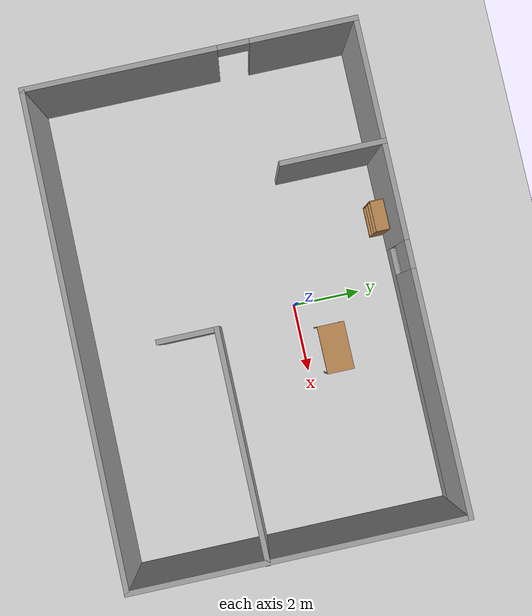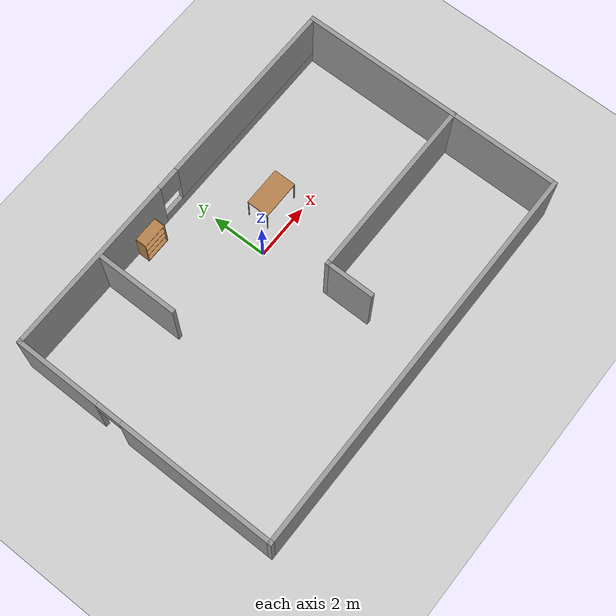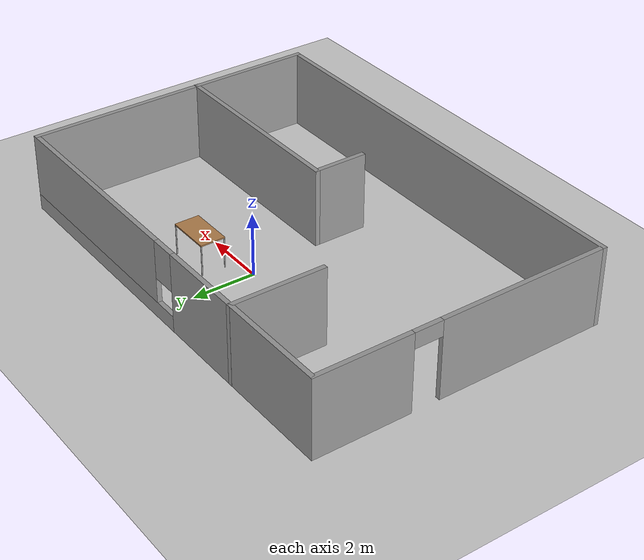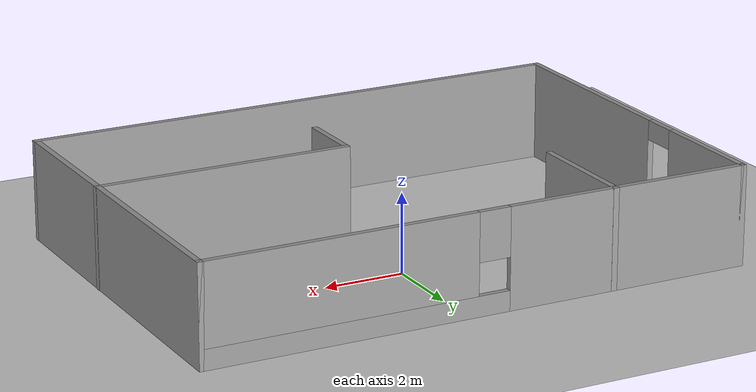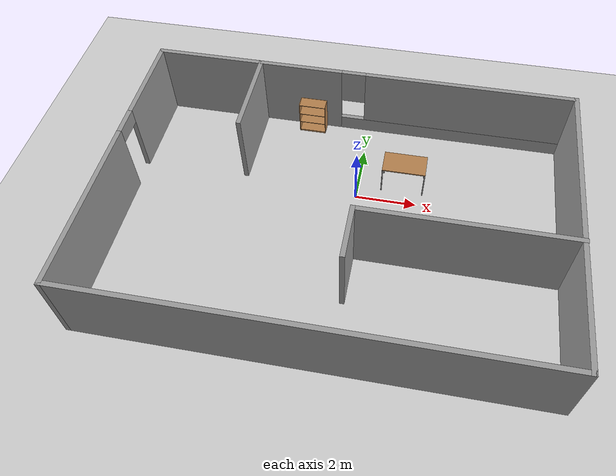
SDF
<sdf version="1.6">
 <world name="default">
  <model name="ground_plane">
   <static>1</static>
   <link name="link">
    <collision name="collision">
     <geometry><plane><normal>0 0 1</normal><size>100 100</size></plane></geometry>
     <surface><friction><ode><mu>100</mu><mu2>50</mu2></ode></friction></surface>
    </collision>
    <visual name="visual">
     <cast_shadows>0</cast_shadows>
     <geometry><plane><normal>0 0 1</normal><size>100 100</size></plane></geometry>
     <material>
      <script><uri>file://media/materials/scripts/gazebo.material</uri><name>Gazebo/Grey</name></script>
     </material>
    </visual>
   </link>
  </model>
  <gravity>0 0 -9.8</gravity>
  <magnetic_field>6e-06 2.3e-05 -4.2e-05</magnetic_field>
  <atmosphere type="adiabatic"/>
  <physics name="default_physics" default="0" type="ode">
   <max_step_size>0.001</max_step_size>
   <real_time_factor>1</real_time_factor>
   <real_time_update_rate>1000</real_time_update_rate>
  </physics>
  <scene><ambient>0.4 0.4 0.4 1</ambient><background>0.7 0.7 0.7 1</background><shadows>1</shadows></scene>
  <spherical_coordinates>
   <surface_model>EARTH_WGS84</surface_model>
   <latitude_deg>0</latitude_deg>
   <longitude_deg>0</longitude_deg>
   <elevation>0</elevation>
   <heading_deg>0</heading_deg>
  </spherical_coordinates>
  <model name="tutor_building1">
   <pose>-0.336243 -1.49354 0 0 -0 0</pose>
   <link name="Wall_15">
    <pose>-6.93206 -0.000653 0 0 -0 1.5708</pose>
    <visual name="Wall_15_Visual_0">
     <pose>-1.98323 0 1.25 0 -0 0</pose>
     <geometry><box><size>5.53354 0.15 2.5</size></box></geometry>
     <material>
      <script><uri>file://media/materials/scripts/gazebo.material</uri><name>Gazebo/Grey</name></script>
      <ambient>1 1 1 1</ambient>
     </material>
    </visual>
    <collision name="Wall_15_Collision_0">
     <geometry><box><size>5.53354 0.15 2.5</size></box></geometry>
     <pose>-1.98323 0 1.25 0 -0 0</pose>
    </collision>
    <visual name="Wall_15_Visual_1">
     <pose>3.21677 0 1.25 0 -0 0</pose>
     <geometry><box><size>3.06646 0.15 2.5</size></box></geometry>
     <material>
      <script><uri>file://media/materials/scripts/gazebo.material</uri><name>Gazebo/Grey</name></script>
      <ambient>1 1 1 1</ambient>
     </material>
    </visual>
    <collision name="Wall_15_Collision_1">
     <geometry><box><size>3.06646 0.15 2.5</size></box></geometry>
     <pose>3.21677 0 1.25 0 -0 0</pose>
    </collision>
    <visual name="Wall_15_Visual_2">
     <pose>1.23354 0 2.25 0 -0 0</pose>
     <geometry><box><size>0.9 0.15 0.5</size></box></geometry>
     <material>
      <script><uri>file://media/materials/scripts/gazebo.material</uri><name>Gazebo/Grey</name></script>
      <ambient>1 1 1 1</ambient>
     </material>
    </visual>
    <collision name="Wall_15_Collision_2">
     <geometry><box><size>0.9 0.15 0.5</size></box></geometry>
     <pose>1.23354 0 2.25 0 -0 0</pose>
    </collision>
   </link>
   <link name="Wall_16">
    <pose>-0.007063 4.67435 0 0 -0 0</pose>
    <visual name="Wall_16_Visual_0">
     <pose>-3.83604 0 1.25 0 -0 0</pose>
     <geometry><box><size>6.32792 0.15 2.5</size></box></geometry>
     <material>
      <script><uri>file://media/materials/scripts/gazebo.material</uri><name>Gazebo/Grey</name></script>
      <ambient>1 1 1 1</ambient>
     </material>
    </visual>
    <collision name="Wall_16_Collision_0">
     <geometry><box><size>6.32792 0.15 2.5</size></box></geometry>
     <pose>-3.83604 0 1.25 0 -0 0</pose>
    </collision>
    <visual name="Wall_16_Visual_1">
     <pose>3.16396 0 0.25 0 -0 0</pose>
     <geometry><box><size>7.67208 0.15 0.5</size></box></geometry>
     <material>
      <script><uri>file://media/materials/scripts/gazebo.material</uri><name>Gazebo/Grey</name></script>
      <ambient>1 1 1 1</ambient>
     </material>
    </visual>
    <collision name="Wall_16_Collision_1">
     <geometry><box><size>7.67208 0.15 0.5</size></box></geometry>
     <pose>3.16396 0 0.25 0 -0 0</pose>
    </collision>
    <visual name="Wall_16_Visual_2">
     <pose>3.56396 0 1.5 0 -0 0</pose>
     <geometry><box><size>6.87208 0.15 2</size></box></geometry>
     <material>
      <script><uri>file://media/materials/scripts/gazebo.material</uri><name>Gazebo/Grey</name></script>
      <ambient>1 1 1 1</ambient>
     </material>
    </visual>
    <collision name="Wall_16_Collision_2">
     <geometry><box><size>6.87208 0.15 2</size></box></geometry>
     <pose>3.56396 0 1.5 0 -0 0</pose>
    </collision>
    <visual name="Wall_16_Visual_3">
     <pose>-0.27208 0 1.9 0 -0 0</pose>
     <geometry><box><size>0.8 0.15 1.2</size></box></geometry>
     <material>
      <script><uri>file://media/materials/scripts/gazebo.material</uri><name>Gazebo/Grey</name></script>
      <ambient>1 1 1 1</ambient>
     </material>
    </visual>
    <collision name="Wall_16_Collision_3">
     <geometry><box><size>0.8 0.15 1.2</size></box></geometry>
     <pose>-0.27208 0 1.9 0 -0 0</pose>
    </collision>
   </link>
   <link name="Wall_17">
    <collision name="Wall_17_Collision">
     <geometry><box><size>9.5 0.15 2.5</size></box></geometry>
     <pose>0 0 1.25 0 -0 0</pose>
    </collision>
    <visual name="Wall_17_Visual">
     <pose>0 0 1.25 0 -0 0</pose>
     <geometry><box><size>9.5 0.15 2.5</size></box></geometry>
     <material>
      <script><uri>file://media/materials/scripts/gazebo.material</uri><name>Gazebo/Grey</name></script>
      <ambient>1 1 1 1</ambient>
     </material>
    </visual>
    <pose>6.91794 -0.000653 0 0 0 -1.5708</pose>
   </link>
   <link name="Wall_18">
    <collision name="Wall_18_Collision">
     <geometry><box><size>14 0.15 2.5</size></box></geometry>
     <pose>0 0 1.25 0 -0 0</pose>
    </collision>
    <visual name="Wall_18_Visual">
     <pose>0 0 1.25 0 -0 0</pose>
     <geometry><box><size>14 0.15 2.5</size></box></geometry>
     <material>
      <script><uri>file://media/materials/scripts/gazebo.material</uri><name>Gazebo/Grey</name></script>
      <ambient>1 1 1 1</ambient>
     </material>
    </visual>
    <pose>-0.007063 -4.67565 0 0 -0 3.14159</pose>
   </link>
   <link name="Wall_20">
    <collision name="Wall_20_Collision">
     <geometry><box><size>6.5 0.15 2.5</size></box></geometry>
     <pose>0 0 1.25 0 -0 0</pose>
    </collision>
    <visual name="Wall_20_Visual">
     <pose>0 0 1.25 0 -0 0</pose>
     <geometry><box><size>6.5 0.15 2.5</size></box></geometry>
     <material>
      <script><uri>file://media/materials/scripts/gazebo.material</uri><name>Gazebo/Grey</name></script>
      <ambient>1 1 1 1</ambient>
     </material>
    </visual>
    <pose>3.75706 -0.860692 0 0 -0 3.14159</pose>
   </link>
   <link name="Wall_22">
    <collision name="Wall_22_Collision">
     <geometry><box><size>3 0.15 2.5</size></box></geometry>
     <pose>0 0 1.25 0 -0 0</pose>
    </collision>
    <visual name="Wall_22_Visual">
     <pose>0 0 1.25 0 -0 0</pose>
     <geometry><box><size>3 0.15 2.5</size></box></geometry>
     <material>
      <script><uri>file://media/materials/scripts/gazebo.material</uri><name>Gazebo/Grey</name></script>
      <ambient>1 1 1 1</ambient>
     </material>
    </visual>
    <pose>-3.44277 3.25065 0 0 0 -1.5708</pose>
   </link>
   <link name="Wall_24">
    <collision name="Wall_24_Collision">
     <geometry><box><size>1.75 0.15 2.5</size></box></geometry>
     <pose>0 0 1.25 0 -0 0</pose>
    </collision>
    <visual name="Wall_24_Visual">
     <pose>0 0 1.25 0 -0 0</pose>
     <geometry><box><size>1.75 0.15 2.5</size></box></geometry>
     <material>
      <script><uri>file://media/materials/scripts/gazebo.material</uri><name>Gazebo/Grey</name></script>
      <ambient>1 1 1 1</ambient>
     </material>
    </visual>
    <pose>0.582064 -1.66069 0 0 0 -1.5708</pose>
   </link>
   <static>1</static>
  </model>
  <light name="light0" type="spot">
   <pose>4.66955 0.968105 1 0 -0 0</pose>
   <diffuse>0.5 0.5 0.5 1</diffuse>
   <specular>0.1 0.1 0.1 1</specular>
   <direction>0 0 -1</direction>
   <attenuation>
    <range>20</range>
    <constant>0.5</constant>
    <linear>0.01</linear>
    <quadratic>0.001</quadratic>
   </attenuation>
   <cast_shadows>0</cast_shadows>
   <spot><inner_angle>0.6</inner_angle><outer_angle>1</outer_angle><falloff>1</falloff></spot>
  </light>
  <light name="light1" type="spot">
   <pose>-3.49192 -2.86997 1 0 -0 0</pose>
   <diffuse>0.5 0.5 0.5 1</diffuse>
   <specular>0.1 0.1 0.1 1</specular>
   <direction>0 0 -1</direction>
   <attenuation>
    <range>20</range>
    <constant>0.5</constant>
    <linear>0.01</linear>
    <quadratic>0.001</quadratic>
   </attenuation>
   <cast_shadows>0</cast_shadows>
   <spot><inner_angle>0.6</inner_angle><outer_angle>1</outer_angle><falloff>1</falloff></spot>
  </light>
  <light name="light2" type="spot">
   <pose>3.84217 -4.13933 1 0 -0 0</pose>
   <diffuse>0.5 0.5 0.5 1</diffuse>
   <specular>0.1 0.1 0.1 1</specular>
   <direction>0 0 -1</direction>
   <attenuation>
    <range>20</range>
    <constant>0.5</constant>
    <linear>0.01</linear>
    <quadratic>0.001</quadratic>
   </attenuation>
   <cast_shadows>0</cast_shadows>
   <spot><inner_angle>0.6</inner_angle><outer_angle>1</outer_angle><falloff>1</falloff></spot>
  </light>
  <light name="light3" type="spot">
   <pose>-5.46263 1.80043 1 0 -0 0</pose>
   <diffuse>0.5 0.5 0.5 1</diffuse>
   <specular>0.1 0.1 0.1 1</specular>
   <direction>0 0 -1</direction>
   <attenuation>
    <range>20</range>
    <constant>0.5</constant>
    <linear>0.01</linear>
    <quadratic>0.001</quadratic>
   </attenuation>
   <cast_shadows>0</cast_shadows>
   <spot><inner_angle>0.6</inner_angle><outer_angle>1</outer_angle><falloff>1</falloff></spot>
  </light>
  <model name="bookshelf">
   <static>1</static>
   <link name="link">
    <inertial><mass>1</mass></inertial>
    <collision name="back">
     <pose>0 0.005 0.6 0 -0 0</pose>
     <geometry><box><size>0.9 0.01 1.2</size></box></geometry>
    </collision>
    <visual name="visual1">
     <pose>0 0.005 0.6 0 -0 0</pose>
     <geometry><box><size>0.9 0.01 1.2</size></box></geometry>
     <material>
      <script><uri>file://media/materials/scripts/gazebo.material</uri><name>Gazebo/Wood</name></script>
     </material>
    </visual>
    <collision name="left_side">
     <pose>0.45 -0.195 0.6 0 -0 0</pose>
     <geometry><box><size>0.02 0.4 1.2</size></box></geometry>
    </collision>
    <visual name="visual2">
     <pose>0.45 -0.195 0.6 0 -0 0</pose>
     <geometry><box><size>0.02 0.4 1.2</size></box></geometry>
     <material>
      <script><uri>file://media/materials/scripts/gazebo.material</uri><name>Gazebo/Wood</name></script>
     </material>
    </visual>
    <collision name="right_side">
     <pose>-0.45 -0.195 0.6 0 -0 0</pose>
     <geometry><box><size>0.02 0.4 1.2</size></box></geometry>
    </collision>
    <visual name="visual3">
     <pose>-0.45 -0.195 0.6 0 -0 0</pose>
     <geometry><box><size>0.02 0.4 1.2</size></box></geometry>
     <material>
      <script><uri>file://media/materials/scripts/gazebo.material</uri><name>Gazebo/Wood</name></script>
     </material>
    </visual>
    <collision name="bottom">
     <pose>0 -0.195 0.03 0 -0 0</pose>
     <geometry><box><size>0.88 0.4 0.06</size></box></geometry>
    </collision>
    <visual name="visual4">
     <pose>0 -0.195 0.03 0 -0 0</pose>
     <geometry><box><size>0.88 0.4 0.06</size></box></geometry>
     <material>
      <script><uri>file://media/materials/scripts/gazebo.material</uri><name>Gazebo/Wood</name></script>
     </material>
    </visual>
    <collision name="top">
     <pose>0 -0.195 1.19 0 -0 0</pose>
     <geometry><box><size>0.88 0.4 0.02</size></box></geometry>
    </collision>
    <visual name="visual5">
     <pose>0 -0.195 1.19 0 -0 0</pose>
     <geometry><box><size>0.88 0.4 0.02</size></box></geometry>
     <material>
      <script><uri>file://media/materials/scripts/gazebo.material</uri><name>Gazebo/Wood</name></script>
     </material>
    </visual>
    <collision name="low_shelf">
     <pose>0 -0.195 0.43 0 -0 0</pose>
     <geometry><box><size>0.88 0.4 0.02</size></box></geometry>
    </collision>
    <visual name="visual6">
     <pose>0 -0.195 0.43 0 -0 0</pose>
     <geometry><box><size>0.88 0.4 0.02</size></box></geometry>
     <material>
      <script><uri>file://media/materials/scripts/gazebo.material</uri><name>Gazebo/Wood</name></script>
     </material>
    </visual>
    <collision name="high_shelf">
     <pose>0 -0.195 0.8 0 -0 0</pose>
     <geometry><box><size>0.88 0.4 0.02</size></box></geometry>
    </collision>
    <visual name="visual7">
     <pose>0 -0.195 0.8 0 -0 0</pose>
     <geometry><box><size>0.88 0.4 0.02</size></box></geometry>
     <material>
      <script><uri>file://media/materials/scripts/gazebo.material</uri><name>Gazebo/Wood</name></script>
     </material>
    </visual>
   </link>
   <pose>-1.97819 3.08438 0 0 -0 0</pose>
  </model>
  <model name="table">
   <static>0</static>
   <link name="link">
    <collision name="surface">
     <pose>0 0 1 0 -0 0</pose>
     <geometry><box><size>1.5 0.8 0.03</size></box></geometry>
     <surface><friction><ode><mu>0.6</mu><mu2>0.6</mu2></ode></friction></surface>
    </collision>
    <visual name="visual1">
     <pose>0 0 1 0 -0 0</pose>
     <geometry><box><size>1.4 0.8 0.04</size></box></geometry>
     <material>
      <script><uri>file://media/materials/scripts/gazebo.material</uri><name>Gazebo/Wood</name></script>
     </material>
    </visual>
    <collision name="front_left_leg">
     <pose>0.68 0.38 0.5 0 -0 0</pose>
     <geometry><cylinder><radius>0.02</radius><length>1</length></cylinder></geometry>
    </collision>
    <visual name="front_left_leg">
     <pose>0.68 0.38 0.5 0 -0 0</pose>
     <geometry><cylinder><radius>0.02</radius><length>1</length></cylinder></geometry>
     <material>
      <script><uri>file://media/materials/scripts/gazebo.material</uri><name>Gazebo/Grey</name></script>
     </material>
    </visual>
    <collision name="front_right_leg">
     <pose>0.68 -0.38 0.5 0 -0 0</pose>
     <geometry><cylinder><radius>0.02</radius><length>1</length></cylinder></geometry>
    </collision>
    <visual name="front_right_leg">
     <pose>0.68 -0.38 0.5 0 -0 0</pose>
     <geometry><cylinder><radius>0.02</radius><length>1</length></cylinder></geometry>
     <material>
      <script><uri>file://media/materials/scripts/gazebo.material</uri><name>Gazebo/Grey</name></script>
     </material>
    </visual>
    <collision name="back_right_leg">
     <pose>-0.68 -0.38 0.5 0 -0 0</pose>
     <geometry><cylinder><radius>0.02</radius><length>1</length></cylinder></geometry>
    </collision>
    <visual name="back_right_leg">
     <pose>-0.68 -0.38 0.5 0 -0 0</pose>
     <geometry><cylinder><radius>0.02</radius><length>1</length></cylinder></geometry>
     <material>
      <script><uri>file://media/materials/scripts/gazebo.material</uri><name>Gazebo/Grey</name></script>
     </material>
    </visual>
    <collision name="back_left_leg">
     <pose>-0.68 0.38 0.5 0 -0 0</pose>
     <geometry><cylinder><radius>0.02</radius><length>1</length></cylinder></geometry>
    </collision>
    <visual name="back_left_leg">
     <pose>-0.68 0.38 0.5 0 -0 0</pose>
     <geometry><cylinder><radius>0.02</radius><length>1</length></cylinder></geometry>
     <material>
      <script><uri>file://media/materials/scripts/gazebo.material</uri><name>Gazebo/Grey</name></script>
     </material>
    </visual>
    <inertial>
     <inertia><ixx>1</ixx><ixy>0</ixy><ixz>0</ixz><iyy>1</iyy><iyz>0</iyz><izz>1</izz></inertia>
     <mass>10</mass>
    </inertial>
   </link>
   <pose>1.47199 0.833828 0 0 -0 0</pose>
  </model>
  <light name="light4" type="spot">
   <pose>5.12 1.47036 1 0 -0 0</pose>
   <diffuse>0.5 0.5 0.5 1</diffuse>
   <specular>0.1 0.1 0.1 1</specular>
   <direction>0 0 -1</direction>
   <attenuation>
    <range>20</range>
    <constant>0.5</constant>
    <linear>0.01</linear>
    <quadratic>0.001</quadratic>
   </attenuation>
   <cast_shadows>0</cast_shadows>
   <spot><inner_angle>0.6</inner_angle><outer_angle>1</outer_angle><falloff>1</falloff></spot>
  </light>
 </world>
</sdf>
